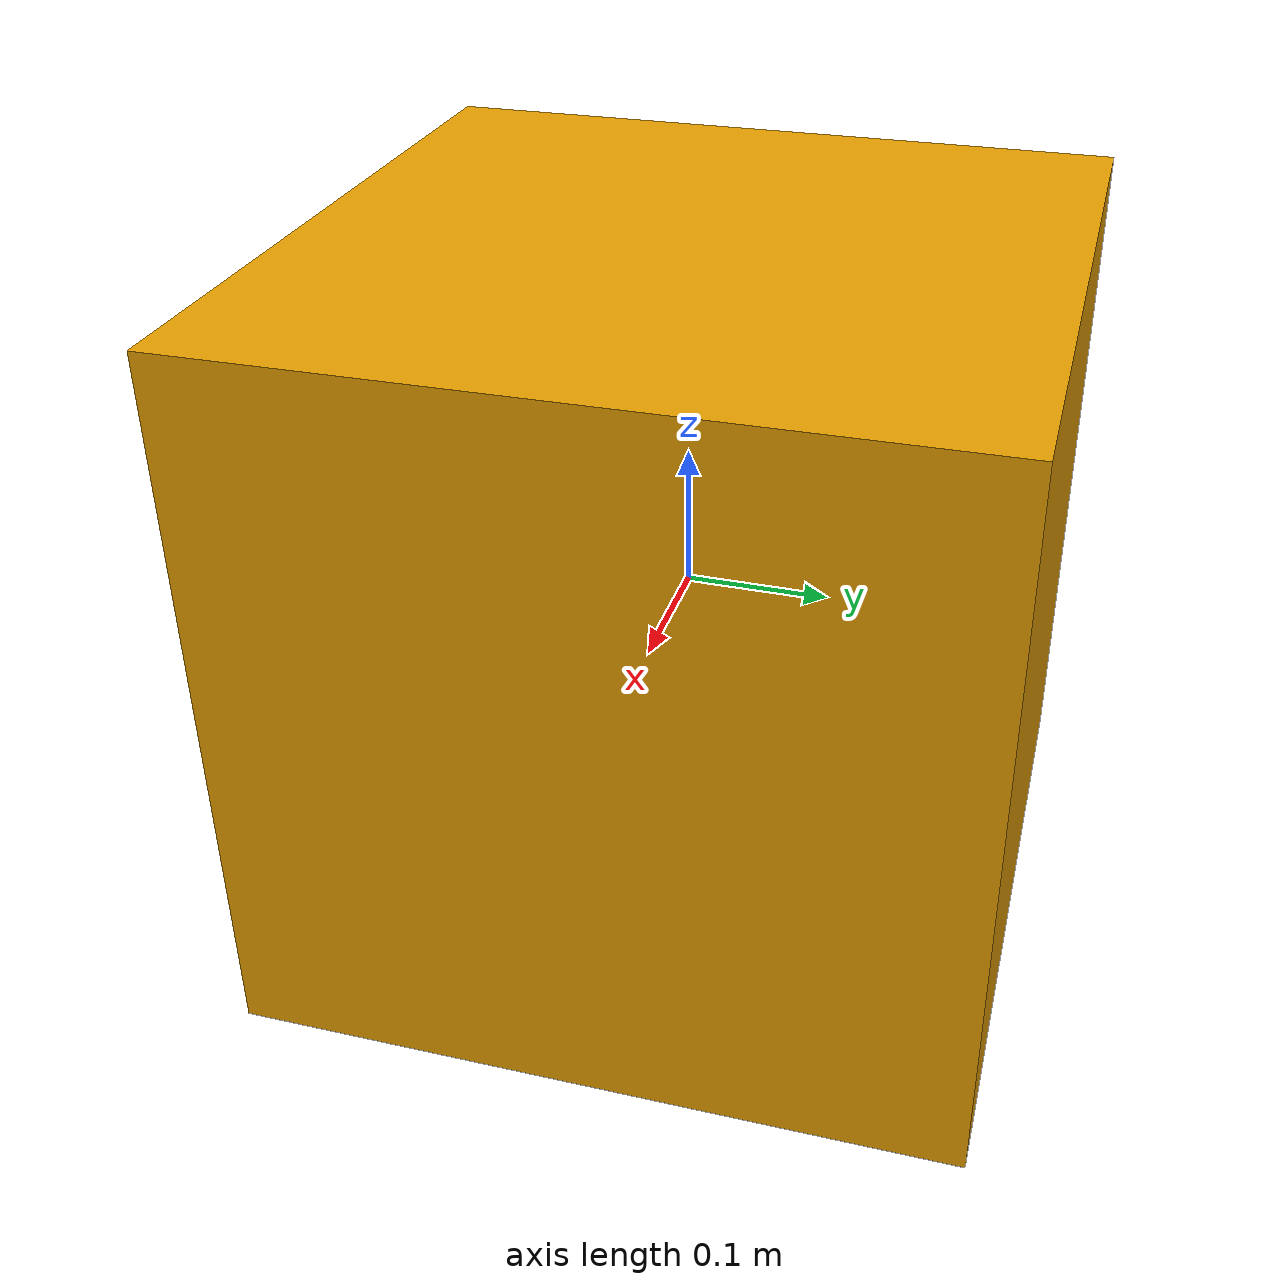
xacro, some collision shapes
<?xml version="1.0"?>
<robot name="albatross_sim" xmlns:xacro="http://www.ros.org/wiki/xacro">
    <xacro:arg name="namespace" default="ns" />
    <xacro:property name="ns" value="$(arg namespace)" />

    <xacro:include filename="$(find tauv_sim_gazebo_plugins)/urdf/utils.xacro"/>
    <xacro:include filename="$(find tauv_sim_gazebo_plugins)/urdf/thruster_plugin.xacro"/>
    <xacro:include filename="$(find tauv_sim_gazebo_plugins)/urdf/navigation_state_plugin.xacro"/>

    <link name="${ns}/base_link">
        <inertial>
            <mass value="15"/>
            <origin xyz="0 0 0" rpy="0 0 0"/>
            <inertia
                    ixx="1"
                    ixy="0"
                    ixz="0"
                    iyy="1"
                    iyz="0"
                    izz="1"
            />
        </inertial>

        <visual>
            <origin xyz="0.1 0 -0.1" rpy="0 0 0"/>
            <geometry>
                <mesh filename="$(find albatross_sim_description)/meshes/albatross.dae" scale="1 1 1" />
            </geometry>
        </visual>

        <collision>
            <origin xyz="0 0 0" rpy="0 0 0"/>
            <geometry>
                <box size="0.5 0.5 0.5"/>
            </geometry>
        </collision>
    </link>

    <gazebo reference="${ns}/base_link">
        <selfCollide>false</selfCollide>
    </gazebo>

    <gazebo>
        <plugin name="${ns}_uuv_plugin" filename="libuuv_underwater_object_ros_plugin.so">
            <fluid_density>1028.0</fluid_density>
            <flow_velocity_topic>hydrodynamics/current_velocity</flow_velocity_topic>
            <debug>true</debug>

            <link name="${ns}/base_link">
                <neutrally_buoyant>0</neutrally_buoyant>

                <volume>0.015</volume>

                <box>
                    <length>0.5</length>
                    <width>0.5</width>
                    <height>0.5</height>
                </box>

                <center_of_buoyancy>0 0 0</center_of_buoyancy>

                <hydrodynamic_model>
                    <type>fossen</type>

                    <added_mass>
                        0 0 0 0 0 0
                        0 0 0 0 0 0
                        0 0 0 0 0 0
                        0 0 0 0 0 0
                        0 0 0 0 0 0
                        0 0 0 0 0 0
                    </added_mass>

                    <linear_damping>
                        -10 -10 -10 -5 -5 -5
                    </linear_damping>

                    <quadratic_damping>
                        0 0 0 0 0 0
                    </quadratic_damping>
                </hydrodynamic_model>
            </link>
        </plugin>
    </gazebo>

    <xacro:include filename="$(find albatross_sim_description)/urdf/thrusters.xacro" />
    <xacro:include filename="$(find albatross_sim_description)/urdf/cameras.xacro" />
    <xacro:include filename="$(find albatross_sim_description)/urdf/sensors.xacro" />
</robot>

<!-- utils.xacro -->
<robot xmlns:xacro="http://www.ros.org/wiki/xacro">
    <xacro:macro name="no_inertial">
        <inertial>
            <mass value="0.0001"/>
            <origin xyz="0 0 0" rpy="0 0 0"/>
            <inertia ixx="0" ixy="0" ixz="0" iyy="0" iyz="0" izz="0"/>
        </inertial>
    </xacro:macro>

    <xacro:macro name="no_visual">
        <visual>
            <origin xyz="0 0 0" rpy="0 0 0"/>
            <geometry>
                <box size="0.0001 0.0001 0.0001"/>
            </geometry>
        </visual>
    </xacro:macro>

    <xacro:macro name="no_collision">
    <collision>
        <origin xyz="0 0 0" rpy="0 0 0"/>
        <geometry>
            <box size="0.0001 0.0001 0.0001"/>
        </geometry>
    </collision>
    </xacro:macro>
</robot>

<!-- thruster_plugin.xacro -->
<robot xmlns:xacro="http://www.ros.org/wiki/xacro">
   <xacro:macro name="t200_thruster"
      params="namespace
              thruster_id
              *origin">
      <joint name="${namespace}/thruster_${thruster_id}_joint" type="continuous">
         <xacro:insert_block name="origin"/>
         <axis xyz="1 0 0"/>
         <parent link="${namespace}/base_link"/>
         <child link="${namespace}/thruster_${thruster_id}"/>
      </joint>

      <link name="${namespace}/thruster_${thruster_id}">
         <xacro:no_inertial/>
         <xacro:no_visual/>
         <xacro:no_collision/>
      </link>

      <gazebo>
         <plugin name="${namespace}_thruster_${thruster_id}" filename="libtauv_thruster_plugin.so">
            <linkName>${namespace}/thruster_${thruster_id}</linkName>
            <timeConstant>0.001</timeConstant>
            <publishRate>50</publishRate>
            <nodeName>${namespace}_thruster_${thruster_id}_plugin</nodeName>
            <targetThrustTopic>/${namespace}/vehicle/thrusters/${thruster_id}/target_thrust</targetThrustTopic>
            <thrustTopic>/${namespace}/vehicle/thrusters/${thruster_id}/thrust</thrustTopic>
            <maxThrust>50</maxThrust>
            <minThrust>-40</minThrust>
         </plugin>
      </gazebo>

      <gazebo reference="${namespace}/thruster_${thruster_id}">
         <selfCollide>false</selfCollide>
      </gazebo>
   </xacro:macro>
</robot>

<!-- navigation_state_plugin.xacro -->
<robot xmlns:xacro="http://www.ros.org/wiki/xacro">
    <xacro:macro name="navigation_state_sensor"
        params="namespace *origin">
        <joint name="${namespace}/navigation_state_sensor_joint" type="revolute">
            <xacro:insert_block name="origin"/>
            <parent link="${namespace}/base_link"/>
            <child link="${namespace}/navigation_state_sensor"/>
            <limit upper="0" lower="0" effort="0" velocity="0"/>
            <axis xyz="1 0 0"/>
        </joint>

        <link name="${namespace}/navigation_state_sensor">
            <xacro:no_inertial/>
            <xacro:no_visual/>
            <xacro:no_collision/>
        </link>

        <gazebo>
            <plugin name="${namespace}_navigation_state_sensor" filename="libtauv_navigation_state_plugin.so">
                <linkName>${namespace}/navigation_state_sensor</linkName>
                <publishRate>50</publishRate>
                <nodeName>${namespace}_navigation_state_plugin</nodeName>
                <navigationStateTopic>/${namespace}/gnc/navigation_state</navigationStateTopic>
                <odomTopic>/${namespace}/gnc/odom</odomTopic>
                <tfNamespace>${namespace}</tfNamespace>
            </plugin>
        </gazebo>

        <gazebo reference="${namespace}/navigation_state_sensor">
            <selfCollide>false</selfCollide>
        </gazebo>
    </xacro:macro>
</robot>

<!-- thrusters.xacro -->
<robot xmlns:xacro="http://www.ros.org/wiki/xacro">
    <!--front right-->
    <xacro:t200_thruster namespace="${ns}" thruster_id="0">
        <origin xyz="0.197 -0.081 0.01" rpy="1.5707963267949 0 0.785398163397449"/>
    </xacro:t200_thruster>

    <!--front left-->
    <xacro:t200_thruster namespace="${ns}" thruster_id="1">
        <origin xyz="0.197 0.081 0.01" rpy="1.5707963267949 0 -0.785398163397459"/>
    </xacro:t200_thruster>

    <!--back right-->
    <xacro:t200_thruster namespace="${ns}" thruster_id="2">
        <origin xyz="-0.197 -0.081 0.01" rpy="-1.5707963267949 0 2.35619449019234"/>
    </xacro:t200_thruster>

    <!--back left-->
    <xacro:t200_thruster namespace="${ns}" thruster_id="3">
        <origin xyz="-0.197 0.081 0.01" rpy="-1.57079632679489 0 -2.35619449019233"/>
    </xacro:t200_thruster>

    <!--front right vertical-->
    <xacro:t200_thruster namespace="${ns}" thruster_id="4">
        <origin xyz="0.061 -0.228 0" rpy="1.5707963267949 -1.5707963267949 0"/>
    </xacro:t200_thruster>

    <!--front left vertical-->
    <xacro:t200_thruster namespace="${ns}" thruster_id="5">
        <origin xyz="0.061 0.228 0" rpy="1.5707963267949 -1.5707963267949 0"/>
    </xacro:t200_thruster>

    <!--back right vertical-->
    <xacro:t200_thruster namespace="${ns}" thruster_id="6">
        <origin xyz="-0.061 -0.228 0" rpy="1.5707963267949 -1.5707963267949 0"/>
    </xacro:t200_thruster>

    <!--back left vertical-->
    <xacro:t200_thruster namespace="${ns}" thruster_id="7">
        <origin xyz="-0.061 0.228 0" rpy="1.5707963267949 -1.5707963267949 0"/>
    </xacro:t200_thruster>
</robot>

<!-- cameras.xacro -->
<robot xmlns:xacro="http://www.ros.org/wiki/xacro">
    <!--    Needs sudo apt-get install ros-noetic-gazebo-ros-pkgs ros-noetic-gazebo-ros-control-->

    <xacro:property name="oakd_color_k1" value="0"/>
    <xacro:property name="oakd_color_k2" value="0"/>
    <xacro:property name="oakd_color_k3" value="0"/>
    <xacro:property name="oakd_color_p1" value="0"/>
    <xacro:property name="oakd_color_p2" value="0"/>
    <xacro:property name="oakd_color_hfov" value="1.1071"/>
    <xacro:property name="oakd_color_width" value="1280"/>
    <xacro:property name="oakd_color_height" value="720"/>

    <xacro:property name="oakd_stereo_k1" value="0"/>
    <xacro:property name="oakd_stereo_k2" value="0"/>
    <xacro:property name="oakd_stereo_k3" value="0"/>
    <xacro:property name="oakd_stereo_p1" value="0"/>
    <xacro:property name="oakd_stereo_p2" value="0"/>
    <xacro:property name="oakd_stereo_hfov" value="1.1071"/>
    <xacro:property name="oakd_stereo_width" value="1280"/>
    <xacro:property name="oakd_stereo_height" value="720"/>
    <xacro:property name="oakd_stereo_baseline" value="0.07"/>

    <link name="${ns}/front_oakd_link">
        <xacro:no_inertial/>
        <xacro:no_visual/>
        <xacro:no_collision/>
    </link>

    <joint name="${ns}/front_oakd_joint" type="revolute">
        <origin xyz="0.2 0 0" rpy="0 0 0"/>
        <parent link="${ns}/base_link"/>
        <child link="${ns}/front_oakd_link"/>
        <limit upper="0" lower="0" effort="0" velocity="0"/>
        <axis xyz="1 0 0"/>
    </joint>

    <gazebo reference="${ns}/front_oakd_link">
        <sensor type="multicamera" name="front_oakd_stereo">
            <camera name="front_oakd_left">
                <pose>0 ${oakd_stereo_baseline / 2} 0 0 0 0</pose>
                <horizontal_fov>${oakd_stereo_hfov}</horizontal_fov>
                <image>
                    <width>${oakd_stereo_width}</width>
                    <height>${oakd_stereo_height}</height>
                    <format>R8G8B8</format>
                </image>
                <clip>
                    <near>0.02</near>
                    <far>300</far>
                </clip>
                <noise>
                    <type>gaussian</type>
                    <mean>0.0</mean>
                    <stddev>0.007</stddev>
                </noise>
                <distortion>
                    <k1>${oakd_stereo_k1}</k1>
                    <k2>${oakd_stereo_k2}</k2>
                    <k3>${oakd_stereo_k3}</k3>
                    <p1>${oakd_stereo_p1}</p1>
                    <p2>${oakd_stereo_p2}</p2>
                    <center>0.5 0.5</center>
                </distortion>
            </camera>

            <camera name="front_oakd_right">
                <pose>0 ${-oakd_stereo_baseline / 2} 0 0 0 0</pose>
                <horizontal_fov>${oakd_stereo_hfov}</horizontal_fov>
                <image>
                    <width>${oakd_stereo_width}</width>
                    <height>${oakd_stereo_height}</height>
                    <format>R8G8B8</format>
                </image>
                <clip>
                    <near>0.02</near>
                    <far>300</far>
                </clip>
                <noise>
                    <type>gaussian</type>
                    <mean>0.0</mean>
                    <stddev>0.007</stddev>
                </noise>
                <distortion>
                    <k1>${oakd_stereo_k1}</k1>
                    <k2>${oakd_stereo_k2}</k2>
                    <k3>${oakd_stereo_k3}</k3>
                    <p1>${oakd_stereo_p1}</p1>
                    <p2>${oakd_stereo_p2}</p2>
                    <center>0.5 0.5</center>
                </distortion>
            </camera>

            <plugin name="front_oakd_stereo_controller" filename="libgazebo_ros_multicamera.so">
                <alwaysOn>true</alwaysOn>
                <updateRate>10.0</updateRate>
                <cameraName>vehicle/oakd_front/stereo</cameraName>
                <imageTopicName>image_raw</imageTopicName>
                <cameraInfoTopicName>camera_info</cameraInfoTopicName>
                <frameName>oakd_front</frameName>
                <hackBaseline>${oakd_stereo_baseline}</hackBaseline>
                <distortionK1>${oakd_stereo_k1}</distortionK1>
                <distortionK2>${oakd_stereo_k2}</distortionK2>
                <distortionK3>${oakd_stereo_k3}</distortionK3>
                <distortionT1>${oakd_stereo_p1}</distortionT1>
                <distortionT2>${oakd_stereo_p2}</distortionT2>
            </plugin>
        </sensor>

        <sensor type="camera" name="front_oakd_color">
            <camera name="front_oakd_color">
                <horizontal_fov>${oakd_color_hfov}</horizontal_fov>
                <image>
                    <width>${oakd_color_width}</width>
                    <height>${oakd_color_height}</height>
                    <format>R8G8B8</format>
                </image>
                <clip>
                    <near>0.02</near>
                    <far>300</far>
                </clip>
                <noise>
                    <type>gaussian</type>
                    <mean>0.0</mean>
                    <stddev>0.007</stddev>
                </noise>
                <distortion>
                    <k1>${oakd_color_k1}</k1>
                    <k2>${oakd_color_k2}</k2>
                    <k3>${oakd_color_k3}</k3>
                    <p1>${oakd_color_p1}</p1>
                    <p2>${oakd_color_p2}</p2>
                    <center>0.5 0.5</center>
                    <distortionModel>plumb_bob</distortionModel>
                </distortion>
            </camera>

            <plugin name="front_oakd_color_controller" filename="libgazebo_ros_camera.so">
                <alwaysOn>true</alwaysOn>
                <updateRate>10.0</updateRate>
                <cameraName>vehicle/oakd_front/color</cameraName>
                <imageTopicName>image_raw</imageTopicName>
                <cameraInfoTopicName>camera_info</cameraInfoTopicName>
                <frameName>oakd_front</frameName>
                <distortionK1>${oakd_color_k1}</distortionK1>
                <distortionK2>${oakd_color_k2}</distortionK2>
                <distortionK3>${oakd_color_k3}</distortionK3>
                <distortionT1>${oakd_color_p1}</distortionT1>
                <distortionT2>${oakd_color_p2}</distortionT2>
            </plugin>

            <visualize>true</visualize>
        </sensor>
    </gazebo>
</robot>

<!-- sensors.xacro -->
<robot xmlns:xacro="http://www.ros.org/wiki/xacro">
    <xacro:navigation_state_sensor namespace="${ns}">
        <origin xyz="0 0 0" rpy="0 0 0"/>
    </xacro:navigation_state_sensor>
</robot>
